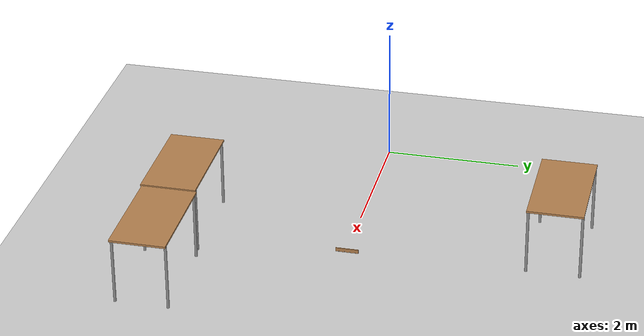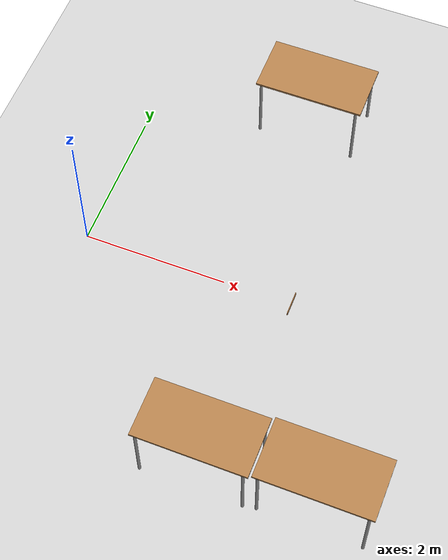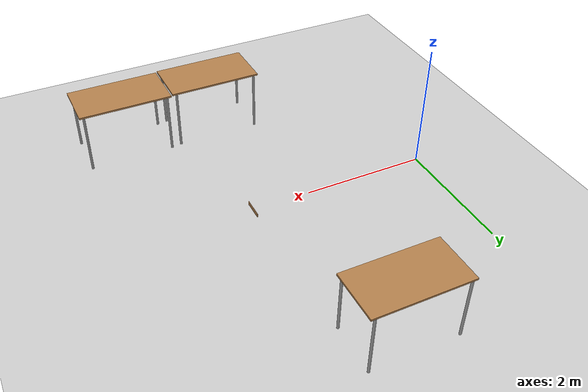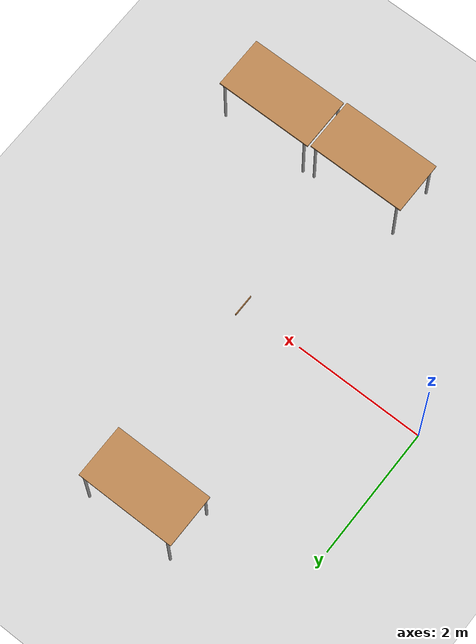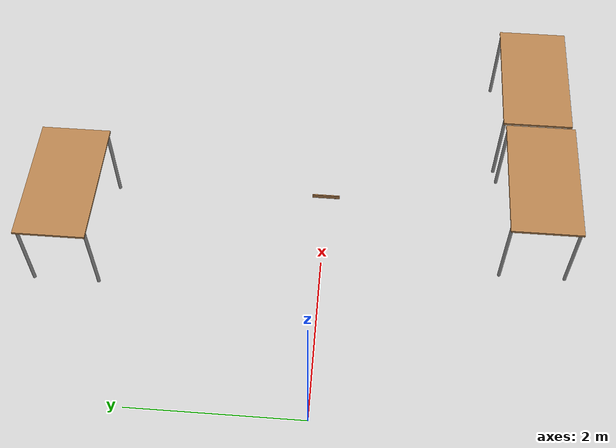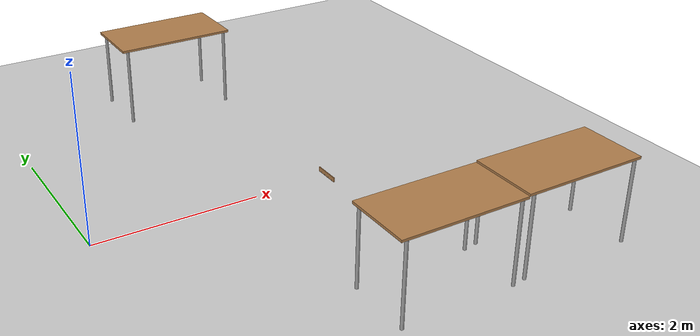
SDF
<sdf version="1.6">
 <world name="default">
  <light name="sun" type="directional">
   <cast_shadows>0</cast_shadows>
   <pose>0 0 10 0 -0 0</pose>
   <diffuse>0.8 0.8 0.8 1</diffuse>
   <specular>0.2 0.2 0.2 1</specular>
   <attenuation>
    <range>1000</range>
    <constant>0.9</constant>
    <linear>0.01</linear>
    <quadratic>0.001</quadratic>
   </attenuation>
   <direction>-0.5 0.1 -0.9</direction>
  </light>
  <model name="ground_plane">
   <static>1</static>
   <link name="link">
    <collision name="collision">
     <geometry><plane><normal>0 0 1</normal><size>100 100</size></plane></geometry>
     <surface><friction><ode><mu>100</mu><mu2>50</mu2></ode></friction></surface>
    </collision>
    <visual name="visual">
     <cast_shadows>0</cast_shadows>
     <geometry><plane><normal>0 0 1</normal><size>100 100</size></plane></geometry>
     <material>
      <script><uri>file://media/materials/scripts/gazebo.material</uri><name>Gazebo/Grey</name></script>
     </material>
    </visual>
   </link>
  </model>
  <physics name="default_physics" default="0" type="ode">
   <real_time_update_rate>1000</real_time_update_rate>
   <max_step_size>0.001</max_step_size>
   <real_time_factor>1</real_time_factor>
   <ode>
    <solver>
     <type>quick</type>
     <iters>150</iters>
     <precon_iters>0</precon_iters>
     <sor>1.4</sor>
     <use_dynamic_moi_rescaling>1</use_dynamic_moi_rescaling>
    </solver>
    <constraints>
     <cfm>1e-05</cfm>
     <erp>0.2</erp>
     <contact_max_correcting_vel>2000</contact_max_correcting_vel>
     <contact_surface_layer>0.01</contact_surface_layer>
    </constraints>
   </ode>
  </physics>
  <gravity>0 0 -9.8</gravity>
  <magnetic_field>6e-06 2.3e-05 -4.2e-05</magnetic_field>
  <atmosphere type="adiabatic"/>
  <scene><ambient>0.4 0.4 0.4 1</ambient><background>0.7 0.7 0.7 1</background><shadows>0</shadows></scene>
  <spherical_coordinates>
   <surface_model>EARTH_WGS84</surface_model>
   <latitude_deg>0</latitude_deg>
   <longitude_deg>0</longitude_deg>
   <elevation>0</elevation>
   <heading_deg>0</heading_deg>
  </spherical_coordinates>
  <model name="table">
   <static>1</static>
   <link name="link">
    <collision name="surface">
     <pose>0 0 1 0 -0 0</pose>
     <geometry><box><size>1.5 0.8 0.03</size></box></geometry>
     <surface><friction><ode><mu>0.6</mu><mu2>0.6</mu2></ode></friction></surface>
    </collision>
    <visual name="visual1">
     <pose>0 0 1 0 -0 0</pose>
     <geometry><box><size>1.5 0.8 0.03</size></box></geometry>
     <material>
      <script><uri>file://media/materials/scripts/gazebo.material</uri><name>Gazebo/Wood</name></script>
     </material>
    </visual>
    <collision name="front_left_leg">
     <pose>0.68 0.38 0.5 0 -0 0</pose>
     <geometry><cylinder><radius>0.02</radius><length>1</length></cylinder></geometry>
    </collision>
    <visual name="front_left_leg">
     <pose>0.68 0.38 0.5 0 -0 0</pose>
     <geometry><cylinder><radius>0.02</radius><length>1</length></cylinder></geometry>
     <material>
      <script><uri>file://media/materials/scripts/gazebo.material</uri><name>Gazebo/Grey</name></script>
     </material>
    </visual>
    <collision name="front_right_leg">
     <pose>0.68 -0.38 0.5 0 -0 0</pose>
     <geometry><cylinder><radius>0.02</radius><length>1</length></cylinder></geometry>
    </collision>
    <visual name="front_right_leg">
     <pose>0.68 -0.38 0.5 0 -0 0</pose>
     <geometry><cylinder><radius>0.02</radius><length>1</length></cylinder></geometry>
     <material>
      <script><uri>file://media/materials/scripts/gazebo.material</uri><name>Gazebo/Grey</name></script>
     </material>
    </visual>
    <collision name="back_right_leg">
     <pose>-0.68 -0.38 0.5 0 -0 0</pose>
     <geometry><cylinder><radius>0.02</radius><length>1</length></cylinder></geometry>
    </collision>
    <visual name="back_right_leg">
     <pose>-0.68 -0.38 0.5 0 -0 0</pose>
     <geometry><cylinder><radius>0.02</radius><length>1</length></cylinder></geometry>
     <material>
      <script><uri>file://media/materials/scripts/gazebo.material</uri><name>Gazebo/Grey</name></script>
     </material>
    </visual>
    <collision name="back_left_leg">
     <pose>-0.68 0.38 0.5 0 -0 0</pose>
     <geometry><cylinder><radius>0.02</radius><length>1</length></cylinder></geometry>
    </collision>
    <visual name="back_left_leg">
     <pose>-0.68 0.38 0.5 0 -0 0</pose>
     <geometry><cylinder><radius>0.02</radius><length>1</length></cylinder></geometry>
     <material>
      <script><uri>file://media/materials/scripts/gazebo.material</uri><name>Gazebo/Grey</name></script>
     </material>
    </visual>
   </link>
   <pose>4.20952 -2.43539 0 0 -0 0</pose>
  </model>
  <model name="table_clone">
   <static>1</static>
   <link name="link">
    <collision name="surface">
     <pose>0 0 1 0 -0 0</pose>
     <geometry><box><size>1.5 0.8 0.03</size></box></geometry>
     <surface><friction><ode><mu>0.6</mu><mu2>0.6</mu2></ode></friction></surface>
    </collision>
    <visual name="visual1">
     <pose>0 0 1 0 -0 0</pose>
     <geometry><box><size>1.5 0.8 0.03</size></box></geometry>
     <material>
      <script><uri>file://media/materials/scripts/gazebo.material</uri><name>Gazebo/Wood</name></script>
     </material>
    </visual>
    <collision name="front_left_leg">
     <pose>0.68 0.38 0.5 0 -0 0</pose>
     <geometry><cylinder><radius>0.02</radius><length>1</length></cylinder></geometry>
    </collision>
    <visual name="front_left_leg">
     <pose>0.68 0.38 0.5 0 -0 0</pose>
     <geometry><cylinder><radius>0.02</radius><length>1</length></cylinder></geometry>
     <material>
      <script><uri>file://media/materials/scripts/gazebo.material</uri><name>Gazebo/Grey</name></script>
     </material>
    </visual>
    <collision name="front_right_leg">
     <pose>0.68 -0.38 0.5 0 -0 0</pose>
     <geometry><cylinder><radius>0.02</radius><length>1</length></cylinder></geometry>
    </collision>
    <visual name="front_right_leg">
     <pose>0.68 -0.38 0.5 0 -0 0</pose>
     <geometry><cylinder><radius>0.02</radius><length>1</length></cylinder></geometry>
     <material>
      <script><uri>file://media/materials/scripts/gazebo.material</uri><name>Gazebo/Grey</name></script>
     </material>
    </visual>
    <collision name="back_right_leg">
     <pose>-0.68 -0.38 0.5 0 -0 0</pose>
     <geometry><cylinder><radius>0.02</radius><length>1</length></cylinder></geometry>
    </collision>
    <visual name="back_right_leg">
     <pose>-0.68 -0.38 0.5 0 -0 0</pose>
     <geometry><cylinder><radius>0.02</radius><length>1</length></cylinder></geometry>
     <material>
      <script><uri>file://media/materials/scripts/gazebo.material</uri><name>Gazebo/Grey</name></script>
     </material>
    </visual>
    <collision name="back_left_leg">
     <pose>-0.68 0.38 0.5 0 -0 0</pose>
     <geometry><cylinder><radius>0.02</radius><length>1</length></cylinder></geometry>
    </collision>
    <visual name="back_left_leg">
     <pose>-0.68 0.38 0.5 0 -0 0</pose>
     <geometry><cylinder><radius>0.02</radius><length>1</length></cylinder></geometry>
     <material>
      <script><uri>file://media/materials/scripts/gazebo.material</uri><name>Gazebo/Grey</name></script>
     </material>
    </visual>
   </link>
   <pose>2.67783 -2.46492 0 0 -0 0</pose>
  </model>
  <model name="table_clone_0">
   <static>1</static>
   <link name="link">
    <collision name="surface">
     <pose>0 0 1 0 -0 0</pose>
     <geometry><box><size>1.5 0.8 0.03</size></box></geometry>
     <surface><friction><ode><mu>0.6</mu><mu2>0.6</mu2></ode></friction></surface>
    </collision>
    <visual name="visual1">
     <pose>0 0 1 0 -0 0</pose>
     <geometry><box><size>1.5 0.8 0.03</size></box></geometry>
     <material>
      <script><uri>file://media/materials/scripts/gazebo.material</uri><name>Gazebo/Wood</name></script>
     </material>
    </visual>
    <collision name="front_left_leg">
     <pose>0.68 0.38 0.5 0 -0 0</pose>
     <geometry><cylinder><radius>0.02</radius><length>1</length></cylinder></geometry>
    </collision>
    <visual name="front_left_leg">
     <pose>0.68 0.38 0.5 0 -0 0</pose>
     <geometry><cylinder><radius>0.02</radius><length>1</length></cylinder></geometry>
     <material>
      <script><uri>file://media/materials/scripts/gazebo.material</uri><name>Gazebo/Grey</name></script>
     </material>
    </visual>
    <collision name="front_right_leg">
     <pose>0.68 -0.38 0.5 0 -0 0</pose>
     <geometry><cylinder><radius>0.02</radius><length>1</length></cylinder></geometry>
    </collision>
    <visual name="front_right_leg">
     <pose>0.68 -0.38 0.5 0 -0 0</pose>
     <geometry><cylinder><radius>0.02</radius><length>1</length></cylinder></geometry>
     <material>
      <script><uri>file://media/materials/scripts/gazebo.material</uri><name>Gazebo/Grey</name></script>
     </material>
    </visual>
    <collision name="back_right_leg">
     <pose>-0.68 -0.38 0.5 0 -0 0</pose>
     <geometry><cylinder><radius>0.02</radius><length>1</length></cylinder></geometry>
    </collision>
    <visual name="back_right_leg">
     <pose>-0.68 -0.38 0.5 0 -0 0</pose>
     <geometry><cylinder><radius>0.02</radius><length>1</length></cylinder></geometry>
     <material>
      <script><uri>file://media/materials/scripts/gazebo.material</uri><name>Gazebo/Grey</name></script>
     </material>
    </visual>
    <collision name="back_left_leg">
     <pose>-0.68 0.38 0.5 0 -0 0</pose>
     <geometry><cylinder><radius>0.02</radius><length>1</length></cylinder></geometry>
    </collision>
    <visual name="back_left_leg">
     <pose>-0.68 0.38 0.5 0 -0 0</pose>
     <geometry><cylinder><radius>0.02</radius><length>1</length></cylinder></geometry>
     <material>
      <script><uri>file://media/materials/scripts/gazebo.material</uri><name>Gazebo/Grey</name></script>
     </material>
    </visual>
   </link>
   <pose>2.22954 2.94435 0 0 -0 0</pose>
  </model>
  <model name="wooden_board_static">
   <link name="base">
    <pose>0 -0 0.00523 0 -0 0</pose>
    <inertial>
     <mass>0.2765</mass>
     <inertia>
      <ixx>0.0025148</ixx>
      <ixy>0</ixy>
      <ixz>0</ixz>
      <iyy>0.00024037</iyy>
      <iyz>0</iyz>
      <izz>0.00275013</izz>
     </inertia>
    </inertial>
    <visual name="visual">
     <geometry><box><size>0.1016 0.3302 0.01046</size></box></geometry>
     <material>
      <script><uri>file://media/materials/scripts/gazebo.material</uri><name>Gazebo/Wood</name></script>
      <shader type="pixel"/>
      <ambient>1 1 1 1</ambient>
      <diffuse>1 1 1 1</diffuse>
      <specular>0.2 0.2 0.2 1</specular>
      <emissive>0 0 0 1</emissive>
     </material>
    </visual>
    <visual name="tee_nut_2">
     <pose>0 -0.038 0 0 -0 0</pose>
     <geometry><cylinder><radius>0.00635</radius><length>0.0105646</length></cylinder></geometry>
     <material>
      <script><uri>file://media/materials/scripts/gazebo.material</uri><name>Gazebo/Grey</name></script>
      <shader type="pixel"/>
      <ambient>0.3 0.3 0.3 1</ambient>
      <diffuse>0.7 0.7 0.7 1</diffuse>
      <specular>0.01 0.01 0.01 1</specular>
      <emissive>0 0 0 1</emissive>
     </material>
    </visual>
    <visual name="tee_nut_1">
     <pose>0 -0.116 0 0 -0 0</pose>
     <geometry><cylinder><radius>0.00635</radius><length>0.0105646</length></cylinder></geometry>
     <material>
      <script><uri>file://media/materials/scripts/gazebo.material</uri><name>Gazebo/Grey</name></script>
      <shader type="pixel"/>
      <ambient>0.3 0.3 0.3 1</ambient>
      <diffuse>0.7 0.7 0.7 1</diffuse>
      <specular>0.01 0.01 0.01 1</specular>
      <emissive>0 0 0 1</emissive>
     </material>
    </visual>
    <visual name="tee_nut_3">
     <pose>0 0.038 0 0 -0 0</pose>
     <geometry><cylinder><radius>0.00635</radius><length>0.0105646</length></cylinder></geometry>
     <material>
      <script><uri>file://media/materials/scripts/gazebo.material</uri><name>Gazebo/Grey</name></script>
      <shader type="pixel"/>
      <ambient>0.3 0.3 0.3 1</ambient>
      <diffuse>0.7 0.7 0.7 1</diffuse>
      <specular>0.01 0.01 0.01 1</specular>
      <emissive>0 0 0 1</emissive>
     </material>
    </visual>
    <visual name="tee_nut_4">
     <pose>0 0.116 0 0 -0 0</pose>
     <geometry><cylinder><radius>0.00635</radius><length>0.0105646</length></cylinder></geometry>
     <material>
      <script><uri>file://media/materials/scripts/gazebo.material</uri><name>Gazebo/Grey</name></script>
      <shader type="pixel"/>
      <ambient>0.3 0.3 0.3 1</ambient>
      <diffuse>0.7 0.7 0.7 1</diffuse>
      <specular>0.01 0.01 0.01 1</specular>
      <emissive>0 0 0 1</emissive>
     </material>
    </visual>
    <collision name="collision">
     <geometry><box><size>0.1016 0.3302 0.01046</size></box></geometry>
     <surface>
      <friction>
       <ode><mu>1</mu><mu2>1</mu2><fdir1>0 0 0</fdir1><slip1>0</slip1><slip2>0</slip2></ode>
       <torsional>
        <coefficient>1</coefficient>
        <patch_radius>0</patch_radius>
        <surface_radius>0.01</surface_radius>
        <use_patch_radius>0</use_patch_radius>
        <ode><slip>0</slip></ode>
       </torsional>
      </friction>
      <bounce><restitution_coefficient>0</restitution_coefficient><threshold>1e+06</threshold></bounce>
      <contact>
       <collide_without_contact>0</collide_without_contact>
       <collide_without_contact_bitmask>1</collide_without_contact_bitmask>
       <collide_bitmask>1</collide_bitmask>
       <ode>
        <soft_cfm>0</soft_cfm>
        <soft_erp>0.2</soft_erp>
        <kp>100000</kp>
        <kd>100</kd>
        <max_vel>100</max_vel>
        <min_depth>0.001</min_depth>
       </ode>
       <bullet>
        <split_impulse>1</split_impulse>
        <split_impulse_penetration_threshold>-0.01</split_impulse_penetration_threshold>
        <soft_cfm>0</soft_cfm>
        <soft_erp>0.2</soft_erp>
        <kp>100000</kp>
        <kd>100</kd>
       </bullet>
      </contact>
     </surface>
    </collision>
   </link>
   <static>1</static>
   <pose>2.96216 0.00609 0 0 -1.56921 0</pose>
  </model>
 </world>
</sdf>
